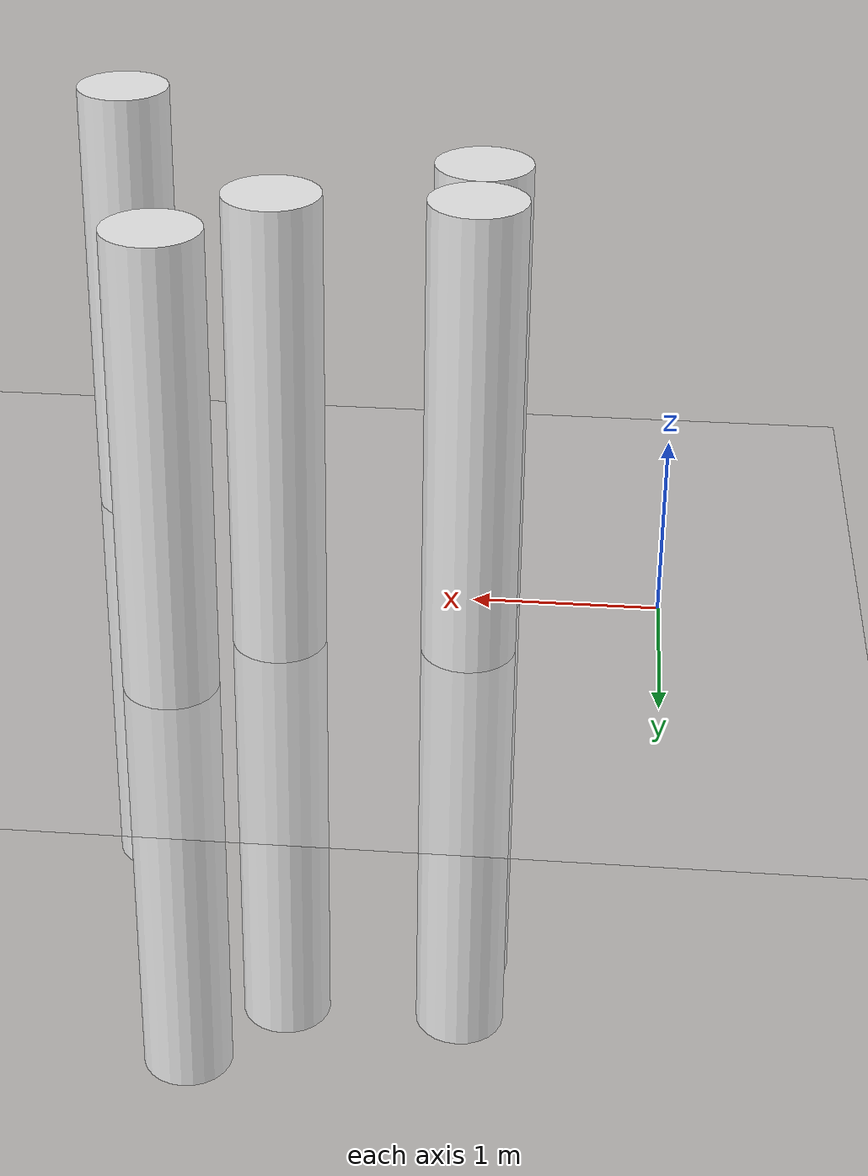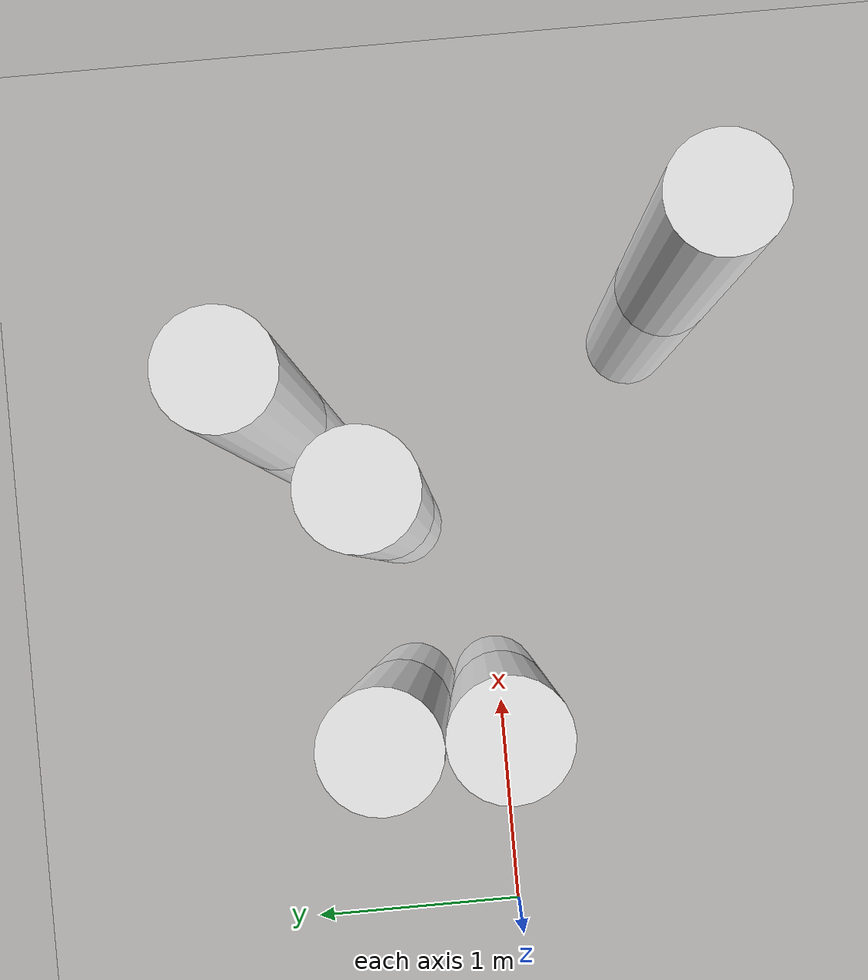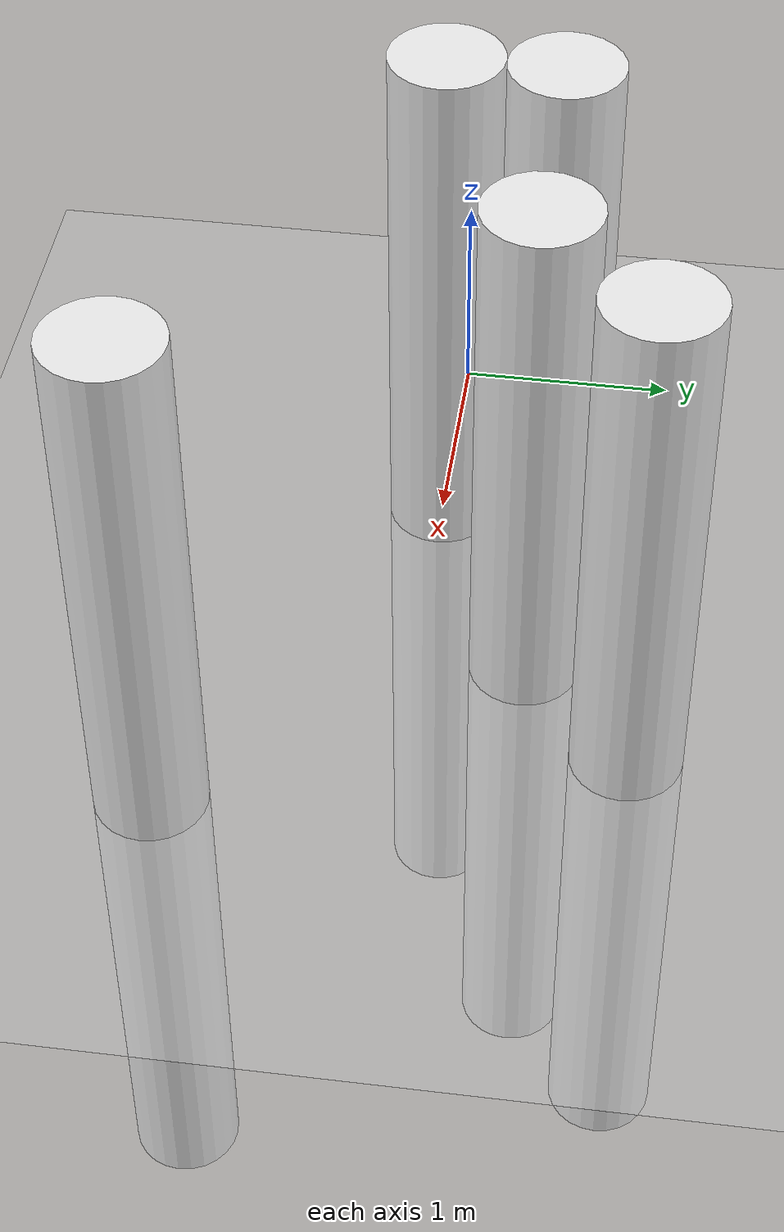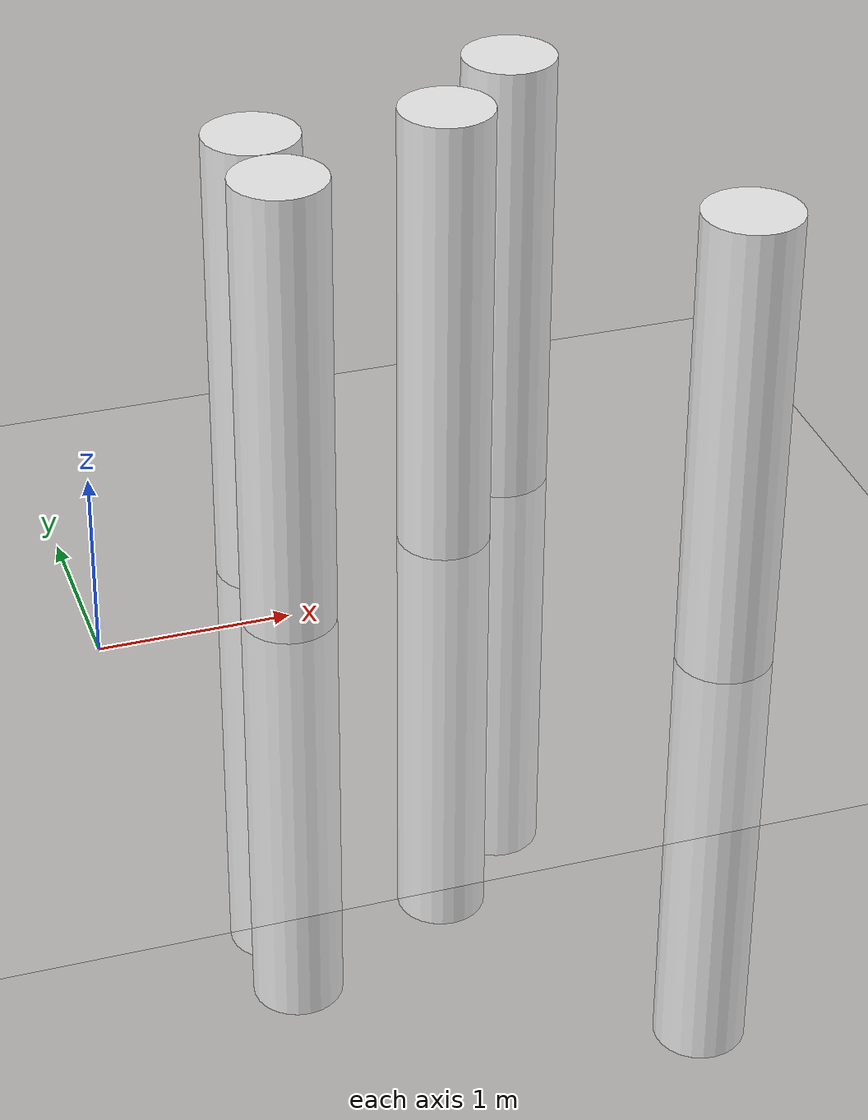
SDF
<?xml version="1.0"?>
<sdf version="1.5">
  <world name="default">
    <include>
      <uri>model://ground_plane</uri>
    </include>
    <include>
      <uri>model://sun</uri>
    </include>
    <model name="obstacle0">
      <pose>1.0 0.0 0 0 0 0</pose>
      <static>true</static>
      <link name="link">
        <collision name="collision">
          <geometry>
            <cylinder>
              <radius>0.25</radius>
              <length>5</length>
            </cylinder>
          </geometry>
        </collision>
        <visual name="visual">
          <geometry>
            <cylinder>
              <radius>0.25</radius>
              <length>5</length>
            </cylinder>
          </geometry>
          <material>
            <script>
              <uri>file://media/materials/scripts/gazebo.material</uri>
              <name>Gazebo/White</name>
            </script>
          </material>
        </visual>
      </link>
    </model>
    <model name="obstacle1">
      <pose>2.0 0.5 0 0 0 0</pose>
      <static>true</static>
      <link name="link">
        <collision name="collision">
          <geometry>
            <cylinder>
              <radius>0.25</radius>
              <length>5</length>
            </cylinder>
          </geometry>
        </collision>
        <visual name="visual">
          <geometry>
            <cylinder>
              <radius>0.25</radius>
              <length>5</length>
            </cylinder>
          </geometry>
          <material>
            <script>
              <uri>file://media/materials/scripts/gazebo.material</uri>
              <name>Gazebo/White</name>
            </script>
          </material>
        </visual>
      </link>
    </model>
    <model name="obstacle2">
      <pose>1.0 0.5 0 0 0 0</pose>
      <static>true</static>
      <link name="link">
        <collision name="collision">
          <geometry>
            <cylinder>
              <radius>0.25</radius>
              <length>5</length>
            </cylinder>
          </geometry>
        </collision>
        <visual name="visual">
          <geometry>
            <cylinder>
              <radius>0.25</radius>
              <length>5</length>
            </cylinder>
          </geometry>
          <material>
            <script>
              <uri>file://media/materials/scripts/gazebo.material</uri>
              <name>Gazebo/White</name>
            </script>
          </material>
        </visual>
      </link>
    </model>
    <model name="obstacle3">
      <pose>2.5 1.0 0 0 0 0</pose>
      <static>true</static>
      <link name="link">
        <collision name="collision">
          <geometry>
            <cylinder>
              <radius>0.25</radius>
              <length>5</length>
            </cylinder>
          </geometry>
        </collision>
        <visual name="visual">
          <geometry>
            <cylinder>
              <radius>0.25</radius>
              <length>5</length>
            </cylinder>
          </geometry>
          <material>
            <script>
              <uri>file://media/materials/scripts/gazebo.material</uri>
              <name>Gazebo/White</name>
            </script>
          </material>
        </visual>
      </link>
    </model>
    <model name="obstacle4">
      <pose>3.0 -1.0 0 0 0 0</pose>
      <static>true</static>
      <link name="link">
        <collision name="collision">
          <geometry>
            <cylinder>
              <radius>0.25</radius>
              <length>5</length>
            </cylinder>
          </geometry>
        </collision>
        <visual name="visual">
          <geometry>
            <cylinder>
              <radius>0.25</radius>
              <length>5</length>
            </cylinder>
          </geometry>
          <material>
            <script>
              <uri>file://media/materials/scripts/gazebo.material</uri>
              <name>Gazebo/White</name>
            </script>
          </material>
        </visual>
      </link>
    </model>
    <plugin name="ros_interface_plugin" filename="librotors_gazebo_ros_interface_plugin.so"/>
    <spherical_coordinates>
    <surface_model>EARTH_WGS84</surface_model>
    <latitude_deg>47.3667</latitude_deg>
    <longitude_deg>8.5500</longitude_deg>
    <elevation>500.0</elevation>
    <heading_deg>0</heading_deg>
    </spherical_coordinates>
    <physics type='ode'>
    <ode>
        <solver>
        <type>quick</type>
        <iters>1000</iters>
        <sor>1.3</sor>
        </solver>
        <constraints>
        <cfm>0</cfm>
        <erp>0.2</erp>
        <contact_max_correcting_vel>100</contact_max_correcting_vel>
        <contact_surface_layer>0.001</contact_surface_layer>
        </constraints>
    </ode>
    <max_step_size>0.01</max_step_size>
    <real_time_factor>1</real_time_factor>
    <real_time_update_rate>100</real_time_update_rate>
    <gravity>0 0 -9.8</gravity>
    </physics>
  </world>
</sdf>
